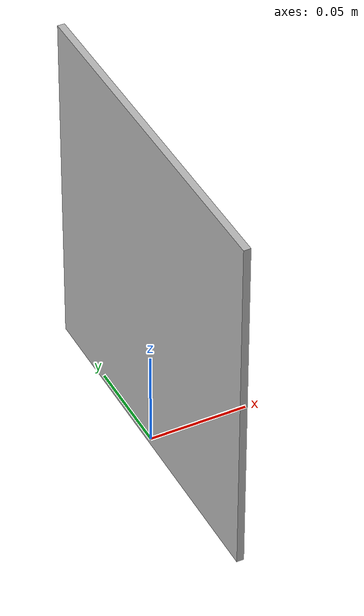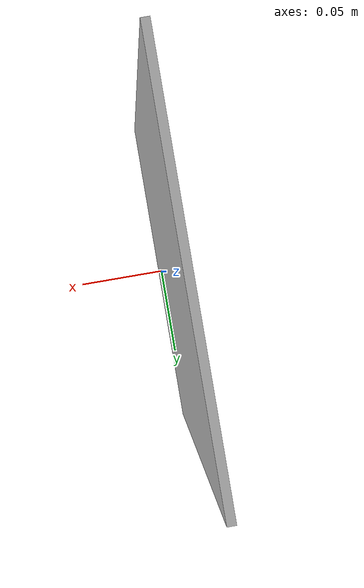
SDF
<?xml version="1.0" ?><sdf version="1.5">
  <model name="mark0719">
    <static>true</static>
    <link name="link">
      <visual name="visual">
        <geometry>
          <mesh>
            <uri>model://mark0719/meshes/mark0719.dae</uri>
          <scale>0.36 0.36 0.36</scale></mesh>
        </geometry>
      </visual>
    </link>
  </model>
</sdf>
